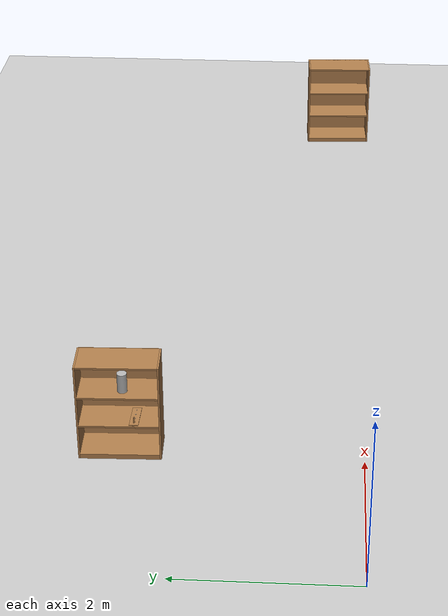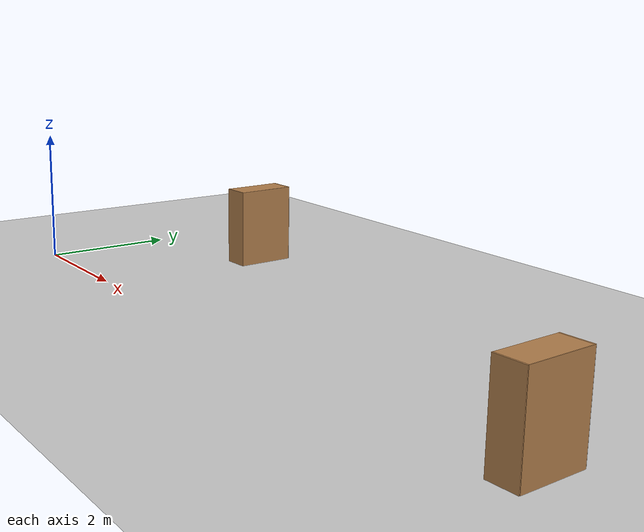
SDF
<sdf version="1.7">
 <world name="default">
  <light name="sun" type="directional">
   <pose>0 0 10 0 -0 0</pose>
   <diffuse>0.8 0.8 0.8 1</diffuse>
   <specular>0.2 0.2 0.2 1</specular>
   <attenuation>
    <range>1000</range>
    <constant>0.9</constant>
    <linear>0.01</linear>
    <quadratic>0.001</quadratic>
   </attenuation>
   <direction>-0.5 0.1 -0.9</direction>
   <spot><inner_angle>0</inner_angle><outer_angle>0</outer_angle><falloff>0</falloff></spot>
  </light>
  <model name="ground_plane">
   <static>1</static>
   <link name="link">
    <collision name="collision">
     <geometry><plane><normal>0 0 1</normal><size>100 100</size></plane></geometry>
     <surface>
      <contact><collide_bitmask>65535</collide_bitmask></contact>
      <friction><ode><mu>100</mu><mu2>50</mu2></ode></friction>
     </surface>
    </collision>
    <visual name="visual">
     <cast_shadows>0</cast_shadows>
     <geometry><plane><normal>0 0 1</normal><size>100 100</size></plane></geometry>
     <material>
      <script><uri>file://media/materials/scripts/gazebo.material</uri><name>Gazebo/Grey</name></script>
     </material>
    </visual>
   </link>
  </model>
  <gravity>0 0 -9.8</gravity>
  <magnetic_field>6e-06 2.3e-05 -4.2e-05</magnetic_field>
  <atmosphere type="adiabatic"/>
  <physics type="ode">
   <max_step_size>0.001</max_step_size>
   <real_time_factor>1</real_time_factor>
   <real_time_update_rate>1000</real_time_update_rate>
  </physics>
  <scene><ambient>0.4 0.4 0.4 1</ambient><background>0.7 0.7 0.7 1</background><shadows>1</shadows></scene>
  <spherical_coordinates>
   <surface_model>EARTH_WGS84</surface_model>
   <latitude_deg>0</latitude_deg>
   <longitude_deg>0</longitude_deg>
   <elevation>0</elevation>
   <heading_deg>0</heading_deg>
  </spherical_coordinates>
  <model name="bookshelf">
   <static>1</static>
   <link name="link">
    <inertial><mass>1</mass></inertial>
    <collision name="back">
     <pose>0 0.005 0.6 0 -0 0</pose>
     <geometry><box><size>0.9 0.01 1.2</size></box></geometry>
    </collision>
    <visual name="visual1">
     <pose>0 0.005 0.6 0 -0 0</pose>
     <geometry><box><size>0.9 0.01 1.2</size></box></geometry>
     <material>
      <script><uri>file://media/materials/scripts/gazebo.material</uri><name>Gazebo/Wood</name></script>
     </material>
    </visual>
    <collision name="left_side">
     <pose>0.45 -0.195 0.6 0 -0 0</pose>
     <geometry><box><size>0.02 0.4 1.2</size></box></geometry>
    </collision>
    <visual name="visual2">
     <pose>0.45 -0.195 0.6 0 -0 0</pose>
     <geometry><box><size>0.02 0.4 1.2</size></box></geometry>
     <material>
      <script><uri>file://media/materials/scripts/gazebo.material</uri><name>Gazebo/Wood</name></script>
     </material>
    </visual>
    <collision name="right_side">
     <pose>-0.45 -0.195 0.6 0 -0 0</pose>
     <geometry><box><size>0.02 0.4 1.2</size></box></geometry>
    </collision>
    <visual name="visual3">
     <pose>-0.45 -0.195 0.6 0 -0 0</pose>
     <geometry><box><size>0.02 0.4 1.2</size></box></geometry>
     <material>
      <script><uri>file://media/materials/scripts/gazebo.material</uri><name>Gazebo/Wood</name></script>
     </material>
    </visual>
    <collision name="bottom">
     <pose>0 -0.195 0.03 0 -0 0</pose>
     <geometry><box><size>0.88 0.4 0.06</size></box></geometry>
    </collision>
    <visual name="visual4">
     <pose>0 -0.195 0.03 0 -0 0</pose>
     <geometry><box><size>0.88 0.4 0.06</size></box></geometry>
     <material>
      <script><uri>file://media/materials/scripts/gazebo.material</uri><name>Gazebo/Wood</name></script>
     </material>
    </visual>
    <collision name="top">
     <pose>0 -0.195 1.19 0 -0 0</pose>
     <geometry><box><size>0.88 0.4 0.02</size></box></geometry>
    </collision>
    <visual name="visual5">
     <pose>0 -0.195 1.19 0 -0 0</pose>
     <geometry><box><size>0.88 0.4 0.02</size></box></geometry>
     <material>
      <script><uri>file://media/materials/scripts/gazebo.material</uri><name>Gazebo/Wood</name></script>
     </material>
    </visual>
    <collision name="low_shelf">
     <pose>0 -0.195 0.43 0 -0 0</pose>
     <geometry><box><size>0.88 0.4 0.02</size></box></geometry>
    </collision>
    <visual name="visual6">
     <pose>0 -0.195 0.43 0 -0 0</pose>
     <geometry><box><size>0.88 0.4 0.02</size></box></geometry>
     <material>
      <script><uri>file://media/materials/scripts/gazebo.material</uri><name>Gazebo/Wood</name></script>
     </material>
    </visual>
    <collision name="high_shelf">
     <pose>0 -0.195 0.8 0 -0 0</pose>
     <geometry><box><size>0.88 0.4 0.02</size></box></geometry>
    </collision>
    <visual name="visual7">
     <pose>0 -0.195 0.8 0 -0 0</pose>
     <geometry><box><size>0.88 0.4 0.02</size></box></geometry>
     <material>
      <script><uri>file://media/materials/scripts/gazebo.material</uri><name>Gazebo/Wood</name></script>
     </material>
    </visual>
   </link>
   <pose>2.29915 2.7095 0 0 0 -1.54081</pose>
  </model>
  <model name="bookshelf_clone">
   <static>1</static>
   <link name="link">
    <inertial><mass>1</mass></inertial>
    <collision name="back">
     <pose>0 0.005 0.6 0 -0 0</pose>
     <geometry><box><size>0.9 0.01 1.2</size></box></geometry>
    </collision>
    <visual name="visual1">
     <pose>0 0.005 0.6 0 -0 0</pose>
     <geometry><box><size>0.9 0.01 1.2</size></box></geometry>
     <material>
      <script><uri>file://media/materials/scripts/gazebo.material</uri><name>Gazebo/Wood</name></script>
     </material>
    </visual>
    <collision name="left_side">
     <pose>0.45 -0.195 0.6 0 -0 0</pose>
     <geometry><box><size>0.02 0.4 1.2</size></box></geometry>
    </collision>
    <visual name="visual2">
     <pose>0.45 -0.195 0.6 0 -0 0</pose>
     <geometry><box><size>0.02 0.4 1.2</size></box></geometry>
     <material>
      <script><uri>file://media/materials/scripts/gazebo.material</uri><name>Gazebo/Wood</name></script>
     </material>
    </visual>
    <collision name="right_side">
     <pose>-0.45 -0.195 0.6 0 -0 0</pose>
     <geometry><box><size>0.02 0.4 1.2</size></box></geometry>
    </collision>
    <visual name="visual3">
     <pose>-0.45 -0.195 0.6 0 -0 0</pose>
     <geometry><box><size>0.02 0.4 1.2</size></box></geometry>
     <material>
      <script><uri>file://media/materials/scripts/gazebo.material</uri><name>Gazebo/Wood</name></script>
     </material>
    </visual>
    <collision name="bottom">
     <pose>0 -0.195 0.03 0 -0 0</pose>
     <geometry><box><size>0.88 0.4 0.06</size></box></geometry>
    </collision>
    <visual name="visual4">
     <pose>0 -0.195 0.03 0 -0 0</pose>
     <geometry><box><size>0.88 0.4 0.06</size></box></geometry>
     <material>
      <script><uri>file://media/materials/scripts/gazebo.material</uri><name>Gazebo/Wood</name></script>
     </material>
    </visual>
    <collision name="top">
     <pose>0 -0.195 1.19 0 -0 0</pose>
     <geometry><box><size>0.88 0.4 0.02</size></box></geometry>
    </collision>
    <visual name="visual5">
     <pose>0 -0.195 1.19 0 -0 0</pose>
     <geometry><box><size>0.88 0.4 0.02</size></box></geometry>
     <material>
      <script><uri>file://media/materials/scripts/gazebo.material</uri><name>Gazebo/Wood</name></script>
     </material>
    </visual>
    <collision name="low_shelf">
     <pose>0 -0.195 0.43 0 -0 0</pose>
     <geometry><box><size>0.88 0.4 0.02</size></box></geometry>
    </collision>
    <visual name="visual6">
     <pose>0 -0.195 0.43 0 -0 0</pose>
     <geometry><box><size>0.88 0.4 0.02</size></box></geometry>
     <material>
      <script><uri>file://media/materials/scripts/gazebo.material</uri><name>Gazebo/Wood</name></script>
     </material>
    </visual>
    <collision name="high_shelf">
     <pose>0 -0.195 0.8 0 -0 0</pose>
     <geometry><box><size>0.88 0.4 0.02</size></box></geometry>
    </collision>
    <visual name="visual7">
     <pose>0 -0.195 0.8 0 -0 0</pose>
     <geometry><box><size>0.88 0.4 0.02</size></box></geometry>
     <material>
      <script><uri>file://media/materials/scripts/gazebo.material</uri><name>Gazebo/Wood</name></script>
     </material>
    </visual>
   </link>
   <pose>10.3777 0.374446 0.102244 0 0 -1.51871</pose>
  </model>
  <model name="beer">
   <link name="link">
    <pose>0 0 0.115 0 -0 0</pose>
    <inertial>
     <mass>0.39</mass>
     <inertia><ixx>0.00058</ixx><ixy>0</ixy><ixz>0</ixz><iyy>0.00058</iyy><iyz>0</iyz><izz>0.00019</izz></inertia>
    </inertial>
    <collision name="collision">
     <geometry><cylinder><radius>0.055</radius><length>0.23</length></cylinder></geometry>
    </collision>
    <visual name="visual">
     <geometry><cylinder><radius>0.055</radius><length>0.23</length></cylinder></geometry>
     <material>
      <script>
       <uri>model://beer/materials/scripts</uri>
       <uri>model://beer/materials/textures</uri>
       <name>Beer/Diffuse</name>
      </script>
     </material>
    </visual>
   </link>
   <pose>2.05584 2.65878 0.809995 1.5e-05 8.3e-05 -3e-05</pose>
  </model>
  <model name="wooden_peg_board">
   <frame name="wooden_board::__model__" attached_to="wooden_board::base">
    <pose relative_to="__model__">0 0 0 0 -0 0</pose>
   </frame>
   <link name="wooden_board::base">
    <pose relative_to="wooden_board::__model__">0 0 0.00523 0 -0 0</pose>
    <inertial>
     <mass>0.2765</mass>
     <inertia>
      <ixx>0.0025148</ixx>
      <ixy>0</ixy>
      <ixz>0</ixz>
      <iyy>0.00024037</iyy>
      <iyz>0</iyz>
      <izz>0.00275013</izz>
     </inertia>
    </inertial>
    <collision name="collision">
     <geometry><box><size>0.1016 0.3302 0.01046</size></box></geometry>
     <surface>
      <contact>
       <poissons_ratio>0.347</poissons_ratio>
       <elastic_modulus>8.8e+09</elastic_modulus>
       <ode><kp>100000</kp><kd>100</kd><max_vel>100</max_vel><min_depth>0.001</min_depth></ode>
      </contact>
      <friction>
       <torsional>
        <coefficient>1</coefficient>
        <use_patch_radius>0</use_patch_radius>
        <surface_radius>0.01</surface_radius>
       </torsional>
      </friction>
     </surface>
    </collision>
    <visual name="visual">
     <geometry><box><size>0.1016 0.3302 0.01046</size></box></geometry>
     <material>
      <script><uri>file://media/materials/scripts/gazebo.material</uri><name>Gazebo/Wood</name></script>
     </material>
    </visual>
    <visual name="tee_nut_1">
     <pose>0 -0.116 0 0 -0 0</pose>
     <geometry><cylinder><radius>0.00635</radius><length>0.0105646</length></cylinder></geometry>
     <material>
      <script><uri>file://media/materials/scripts/gazebo.material</uri><name>Gazebo/Grey</name></script>
     </material>
    </visual>
    <visual name="tee_nut_2">
     <pose>0 -0.038 0 0 -0 0</pose>
     <geometry><cylinder><radius>0.00635</radius><length>0.0105646</length></cylinder></geometry>
     <material>
      <script><uri>file://media/materials/scripts/gazebo.material</uri><name>Gazebo/Grey</name></script>
     </material>
    </visual>
    <visual name="tee_nut_3">
     <pose>0 0.038 0 0 -0 0</pose>
     <geometry><cylinder><radius>0.00635</radius><length>0.0105646</length></cylinder></geometry>
     <material>
      <script><uri>file://media/materials/scripts/gazebo.material</uri><name>Gazebo/Grey</name></script>
     </material>
    </visual>
    <visual name="tee_nut_4">
     <pose>0 0.116 0 0 -0 0</pose>
     <geometry><cylinder><radius>0.00635</radius><length>0.0105646</length></cylinder></geometry>
     <material>
      <script><uri>file://media/materials/scripts/gazebo.material</uri><name>Gazebo/Grey</name></script>
     </material>
    </visual>
   </link>
   <frame name="peg::__model__" attached_to="peg::link">
    <pose relative_to="__model__">0 0.116 0 0 -0 0</pose>
   </frame>
   <link name="peg::link">
    <pose relative_to="peg::__model__">0 0 0.04 0 -0 0</pose>
    <inertial>
     <mass>0.0175</mass>
     <inertia>
      <ixx>9.74923e-06</ixx>
      <ixy>0</ixy>
      <ixz>0</ixz>
      <iyy>9.74923e-06</iyy>
      <iyz>0</iyz>
      <izz>8.31797e-07</izz>
     </inertia>
    </inertial>
    <collision name="collision">
     <geometry><cylinder><radius>0.00975</radius><length>0.08</length></cylinder></geometry>
     <surface>
      <contact>
       <poissons_ratio>0.347</poissons_ratio>
       <elastic_modulus>8.8e+09</elastic_modulus>
       <ode><kp>100000</kp><kd>100</kd><max_vel>100</max_vel><min_depth>0.001</min_depth></ode>
      </contact>
      <friction>
       <torsional>
        <coefficient>1</coefficient>
        <use_patch_radius>0</use_patch_radius>
        <surface_radius>0.01</surface_radius>
       </torsional>
      </friction>
     </surface>
    </collision>
    <visual name="visual">
     <geometry><cylinder><radius>0.00975</radius><length>0.08</length></cylinder></geometry>
     <material>
      <script><uri>file://media/materials/scripts/gazebo.material</uri><name>Gazebo/Wood</name></script>
     </material>
    </visual>
   </link>
   <joint name="board_peg" type="revolute">
    <parent>wooden_board::base</parent>
    <child>peg::link</child>
    <axis>
     <xyz>0 0 1</xyz>
     <limit><upper>0</upper><lower>0</lower></limit>
     <dynamics><spring_reference>0</spring_reference><spring_stiffness>0</spring_stiffness></dynamics>
    </axis>
   </joint>
   <pose>2.09145 2.53371 0.438997 1.5e-05 3e-06 1.55739</pose>
  </model>
 </world>
</sdf>
